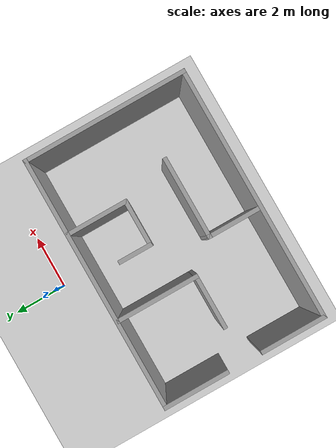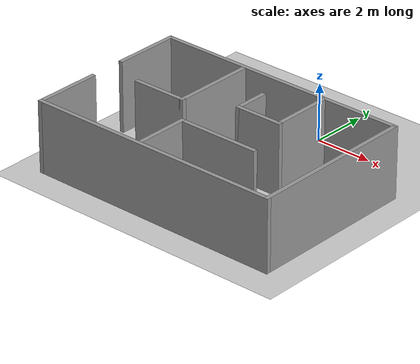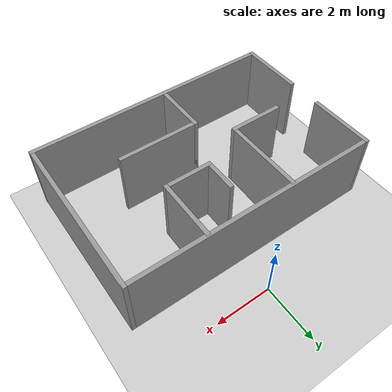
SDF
<?xml version="1.0"?>
<sdf version="1.6">
  <world name="default">
    <light name="sun" type="directional">
      <cast_shadows>true</cast_shadows>
      <pose>0 0 10 0 0 0</pose>
      <diffuse>0.8 0.8 0.8 1</diffuse>
      <specular>0.2 0.2 0.2 1</specular>
      <attenuation>
        <range>1000</range>
        <constant>0.9</constant>
        <linear>0.01</linear>
        <quadratic>0.001</quadratic>
      </attenuation>
      <direction>-0.5 0.1 -0.9</direction>
    </light>

    <model name="ground_plane">
      <static>true</static>
      <link name="link">
        <collision name="collision">
          <geometry>
            <plane>
              <normal>0 0 1</normal>
              <size>100 100</size>
            </plane>
          </geometry>
        </collision>
        <visual name="visual">
          <geometry>
            <plane>
              <normal>0 0 1</normal>
              <size>100 100</size>
            </plane>
          </geometry>
          <material>
            <script>
              <uri>file://media/materials/scripts/gazebo.material</uri>
              <name>Gazebo/Grey</name>
            </script>
          </material>
        </visual>
      </link>
    </model>

    <include>
      <uri>model://room</uri>
    </include>
  </world>
</sdf>

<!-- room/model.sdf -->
<sdf version='1.7'>
  <model name='room'>
    <pose>-0.487859 -3.6562 0 0 -0 0</pose>
    <link name='Wall_0'>
      <collision name='Wall_0_Collision'>
        <geometry>
          <box>
            <size>2.4 0.15 2.5</size>
          </box>
        </geometry>
        <pose>0 0 1.25 0 -0 0</pose>
      </collision>
      <visual name='Wall_0_Visual'>
        <pose>0 0 1.25 0 -0 0</pose>
        <geometry>
          <box>
            <size>2.4 0.15 2.5</size>
          </box>
        </geometry>
        <material>
          <script>
            <uri>file://media/materials/scripts/gazebo.material</uri>
            <name>Gazebo/Grey</name>
          </script>
          <ambient>1 1 1 1</ambient>
        </material>
        <meta>
          <layer>0</layer>
        </meta>
      </visual>
      <pose>-4.55 -2.456205 0 0 -0 -1.5708</pose>
    </link>
    <link name='Wall_0_door_upper'>
      <collision name='Wall_0_door_upper_Collision'>
        <geometry>
          <box>
            <size>2.4 0.15 2.5</size>
          </box>
        </geometry>
        <pose>0 0 1.25 0 -0 0</pose>
      </collision>
      <visual name='Wall_0_door_upper_Visual'>
        <pose>0 0 1.25 0 -0 0</pose>
        <geometry>
          <box>
            <size>2.4 0.15 2.5</size>
          </box>
        </geometry>
        <material>
          <script>
            <uri>file://media/materials/scripts/gazebo.material</uri>
            <name>Gazebo/Grey</name>
          </script>
          <ambient>1 1 1 1</ambient>
        </material>
        <meta>
          <layer>0</layer>
        </meta>
      </visual>
      <pose>-4.55 1.143795 0 0 -0 -1.5708</pose>
    </link>
    <link name='Wall_10'>
      <collision name='Wall_10_Collision'>
        <geometry>
          <box>
            <size>3 0.15 2.5</size>
          </box>
        </geometry>
        <pose>0 0 1.25 0 -0 0</pose>
      </collision>
      <visual name='Wall_10_Visual'>
        <pose>0 0 1.25 0 -0 0</pose>
        <geometry>
          <box>
            <size>3 0.15 2.5</size>
          </box>
        </geometry>
        <material>
          <script>
            <uri>file://media/materials/scripts/gazebo.material</uri>
            <name>Gazebo/Grey</name>
          </script>
          <ambient>1 1 1 1</ambient>
        </material>
        <meta>
          <layer>0</layer>
        </meta>
      </visual>
      <pose>0.936077 -1.66746 0 0 -0 0</pose>
    </link>
    <link name='Wall_12'>
      <collision name='Wall_12_Collision'>
        <geometry>
          <box>
            <size>2.25 0.15 2.5</size>
          </box>
        </geometry>
        <pose>0 0 1.25 0 -0 0</pose>
      </collision>
      <visual name='Wall_12_Visual'>
        <pose>0 0 1.25 0 -0 0</pose>
        <geometry>
          <box>
            <size>2.25 0.15 2.5</size>
          </box>
        </geometry>
        <material>
          <script>
            <uri>file://media/materials/scripts/gazebo.material</uri>
            <name>Gazebo/Grey</name>
          </script>
          <ambient>1 1 1 1</ambient>
        </material>
        <meta>
          <layer>0</layer>
        </meta>
      </visual>
      <pose>1.82414 1.16491 0 0 -0 -1.5708</pose>
    </link>
    <link name='Wall_13'>
      <collision name='Wall_13_Collision'>
        <geometry>
          <box>
            <size>1.75 0.15 2.5</size>
          </box>
        </geometry>
        <pose>0 0 1.25 0 -0 0</pose>
      </collision>
      <visual name='Wall_13_Visual'>
        <pose>0 0 1.25 0 -0 0</pose>
        <geometry>
          <box>
            <size>1.75 0.15 2.5</size>
          </box>
        </geometry>
        <material>
          <script>
            <uri>file://media/materials/scripts/gazebo.material</uri>
            <name>Gazebo/Grey</name>
          </script>
          <ambient>1 1 1 1</ambient>
        </material>
        <meta>
          <layer>0</layer>
        </meta>
      </visual>
      <pose>1.02414 0.114909 0 0 -0 3.14159</pose>
    </link>
    <link name='Wall_14'>
      <collision name='Wall_14_Collision'>
        <geometry>
          <box>
            <size>1.25 0.15 2.5</size>
          </box>
        </geometry>
        <pose>0 0 1.25 0 -0 0</pose>
      </collision>
      <visual name='Wall_14_Visual'>
        <pose>0 0 1.25 0 -0 0</pose>
        <geometry>
          <box>
            <size>1.25 0.15 2.5</size>
          </box>
        </geometry>
        <material>
          <script>
            <uri>file://media/materials/scripts/gazebo.material</uri>
            <name>Gazebo/Grey</name>
          </script>
          <ambient>1 1 1 1</ambient>
        </material>
        <meta>
          <layer>0</layer>
        </meta>
      </visual>
      <pose>0.224138 0.664909 0 0 -0 1.5708</pose>
    </link>
    <link name='Wall_2'>
      <collision name='Wall_2_Collision'>
        <geometry>
          <box>
            <size>9.25 0.15 2.5</size>
          </box>
        </geometry>
        <pose>0 0 1.25 0 -0 0</pose>
      </collision>
      <visual name='Wall_2_Visual'>
        <pose>0 0 1.25 0 -0 0</pose>
        <geometry>
          <box>
            <size>9.25 0.15 2.5</size>
          </box>
        </geometry>
        <material>
          <script>
            <uri>file://media/materials/scripts/gazebo.material</uri>
            <name>Gazebo/Grey</name>
          </script>
          <ambient>1 1 1 1</ambient>
        </material>
        <meta>
          <layer>0</layer>
        </meta>
      </visual>
      <pose>-0 2.26879 0 0 -0 0</pose>
    </link>
    <link name='Wall_3'>
      <collision name='Wall_3_Collision'>
        <geometry>
          <box>
            <size>6 0.15 2.5</size>
          </box>
        </geometry>
        <pose>0 0 1.25 0 -0 0</pose>
      </collision>
      <visual name='Wall_3_Visual'>
        <pose>0 0 1.25 0 -0 0</pose>
        <geometry>
          <box>
            <size>6 0.15 2.5</size>
          </box>
        </geometry>
        <material>
          <script>
            <uri>file://media/materials/scripts/gazebo.material</uri>
            <name>Gazebo/Grey</name>
          </script>
          <ambient>1 1 1 1</ambient>
        </material>
        <meta>
          <layer>0</layer>
        </meta>
      </visual>
      <pose>4.55 -0.656205 0 0 -0 -1.5708</pose>
    </link>
    <link name='Wall_4'>
      <collision name='Wall_4_Collision'>
        <geometry>
          <box>
            <size>9.25 0.15 2.5</size>
          </box>
        </geometry>
        <pose>0 0 1.25 0 -0 0</pose>
      </collision>
      <visual name='Wall_4_Visual'>
        <pose>0 0 1.25 0 -0 0</pose>
        <geometry>
          <box>
            <size>9.25 0.15 2.5</size>
          </box>
        </geometry>
        <material>
          <script>
            <uri>file://media/materials/scripts/gazebo.material</uri>
            <name>Gazebo/Grey</name>
          </script>
          <ambient>1 1 1 1</ambient>
        </material>
        <meta>
          <layer>0</layer>
        </meta>
      </visual>
      <pose>-0 -3.58121 0 0 -0 3.14159</pose>
    </link>
    <link name='Wall_6'>
      <collision name='Wall_6_Collision'>
        <geometry>
          <box>
            <size>3 0.15 2.5</size>
          </box>
        </geometry>
        <pose>0 0 1.25 0 -0 0</pose>
      </collision>
      <visual name='Wall_6_Visual'>
        <pose>0 0 1.25 0 -0 0</pose>
        <geometry>
          <box>
            <size>3 0.15 2.5</size>
          </box>
        </geometry>
        <material>
          <script>
            <uri>file://media/materials/scripts/gazebo.material</uri>
            <name>Gazebo/Grey</name>
          </script>
          <ambient>1 1 1 1</ambient>
        </material>
        <meta>
          <layer>0</layer>
        </meta>
      </visual>
      <pose>-1.39403 0.769795 0 0 -0 -1.5708</pose>
    </link>
    <link name='Wall_7'>
      <collision name='Wall_7_Collision'>
        <geometry>
          <box>
            <size>2 0.15 2.5</size>
          </box>
        </geometry>
        <pose>0 0 1.25 0 -0 0</pose>
      </collision>
      <visual name='Wall_7_Visual'>
        <pose>0 0 1.25 0 -0 0</pose>
        <geometry>
          <box>
            <size>2 0.15 2.5</size>
          </box>
        </geometry>
        <material>
          <script>
            <uri>file://media/materials/scripts/gazebo.material</uri>
            <name>Gazebo/Grey</name>
          </script>
          <ambient>1 1 1 1</ambient>
        </material>
        <meta>
          <layer>0</layer>
        </meta>
      </visual>
      <pose>-2.31903 -0.655205 0 0 -0 3.14159</pose>
    </link>
    <link name='Wall_9'>
      <collision name='Wall_9_Collision'>
        <geometry>
          <box>
            <size>2 0.15 2.5</size>
          </box>
        </geometry>
        <pose>0 0 1.25 0 -0 0</pose>
      </collision>
      <visual name='Wall_9_Visual'>
        <pose>0 0 1.25 0 -0 0</pose>
        <geometry>
          <box>
            <size>2 0.15 2.5</size>
          </box>
        </geometry>
        <material>
          <script>
            <uri>file://media/materials/scripts/gazebo.material</uri>
            <name>Gazebo/Grey</name>
          </script>
          <ambient>1 1 1 1</ambient>
        </material>
        <meta>
          <layer>0</layer>
        </meta>
      </visual>
      <pose>-0.488923 -2.59246 0 0 -0 1.5708</pose>
    </link>
    <static>1</static>
  </model>
</sdf>
